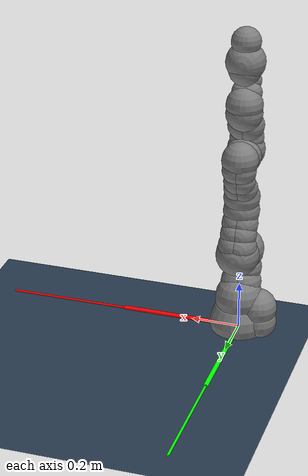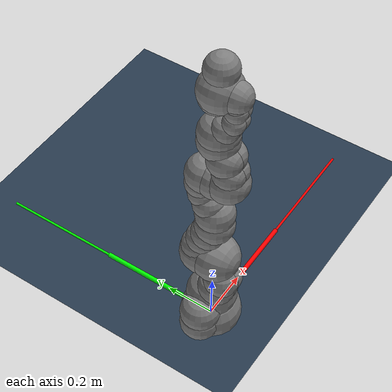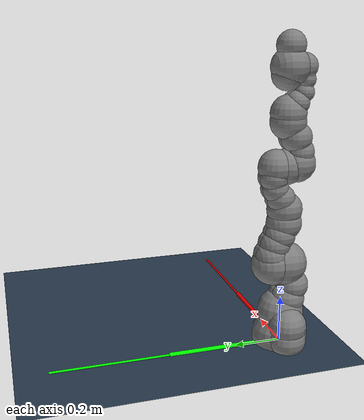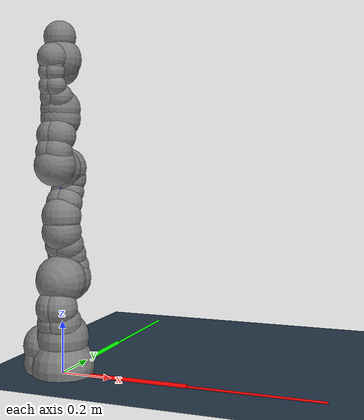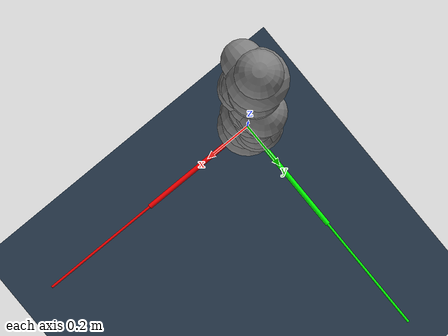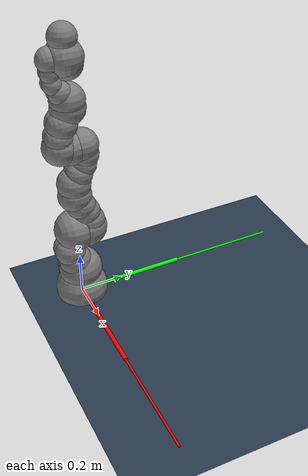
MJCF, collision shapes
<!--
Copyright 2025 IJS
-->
<mujoco model="iiwa14_scene">
  <compiler angle="radian" meshdir="assets/"/>

  <option timestep="0.001" integrator="implicitfast"/>

  <size nkey="1"/>

  <visual>
    <map stiffness="700" fogstart="1" fogend="15" zfar="40" haze="1" shadowscale="0.5"/>
    <rgba haze="0.15 0.25 0.35 1"/>
  </visual>

  <statistic meansize="0.05"/>

  <default>
    <light castshadow="false"/>
    <general biastype="affine" biasprm="0 -1"/>
    <default class="iiwa14_main">
      <light castshadow="true"/>
      <general biastype="none" biasprm="0 0"/>
      <default class="iiwa14_robot">
        <material shininess="0.25"/>
        <site size="0.001 0.005 0.005" group="4" rgba="1 0 0 1"/>
        <general biastype="affine" gainprm="2000" biasprm="0 -2000 -200"/>
        <default class="iiwa14_joint1">
          <joint range="-2.96706 2.96706"/>
          <general ctrlrange="-2.96706 2.96706"/>
          <default class="iiwa14_joint2">
            <joint range="-2.0944 2.0944"/>
            <general ctrlrange="-2.0944 2.0944"/>
          </default>
        </default>
        <default class="iiwa14_joint3">
          <joint range="-3.05433 3.05433"/>
          <general ctrlrange="-3.05433 3.05433"/>
        </default>
        <default class="iiwa14_visual">
          <geom type="mesh" contype="0" conaffinity="0" group="2" material="gray"/>
        </default>
        <default class="iiwa14_collision">
          <geom group="3"/>
        </default>
      </default>
    </default>
  </default>

  <asset>
    <texture type="skybox" colorspace="auto" builtin="gradient" rgb1="0.3 0.5 0.7" rgb2="0 0 0" width="512" height="3072"/>
    <texture type="2d" colorspace="auto" name="texplane" builtin="checker" mark="cross" rgb1="0.2 0.3 0.4" rgb2="0.1 0.15 0.2" markrgb="0.8 0.8 0.8" width="512" height="512"/>
    <material name="matplane" texture="texplane" texuniform="true" texrepeat="10 10" reflectance="0.3"/>
    <material name="iiwa14_gray" class="iiwa14_robot" rgba="0.4 0.4 0.4 1"/>
    <material name="iiwa14_light_gray" class="iiwa14_robot" rgba="0.6 0.6 0.6 1"/>
    <material name="iiwa14_black" class="iiwa14_robot" rgba="0 0 0 1"/>
    <material name="iiwa14_orange" class="iiwa14_robot" rgba="1 0.423529 0.0392157 1"/>
    <mesh name="iiwa14_link_0" content_type="model/obj" file="iiwa14/link_0.obj"/>
    <mesh name="iiwa14_link_1" content_type="model/obj" file="iiwa14/link_1.obj"/>
    <mesh name="iiwa14_link_2_orange" content_type="model/obj" file="iiwa14/link_2_orange.obj"/>
    <mesh name="iiwa14_link_2_grey" content_type="model/obj" file="iiwa14/link_2_grey.obj"/>
    <mesh name="iiwa14_link_3" content_type="model/obj" file="iiwa14/link_3.obj"/>
    <mesh name="iiwa14_band" content_type="model/obj" file="iiwa14/band.obj"/>
    <mesh name="iiwa14_kuka" content_type="model/obj" file="iiwa14/kuka.obj"/>
    <mesh name="iiwa14_link_4_orange" content_type="model/obj" file="iiwa14/link_4_orange.obj"/>
    <mesh name="iiwa14_link_4_grey" content_type="model/obj" file="iiwa14/link_4_grey.obj"/>
    <mesh name="iiwa14_link_5" content_type="model/obj" file="iiwa14/link_5.obj"/>
    <mesh name="iiwa14_link_6_orange" content_type="model/obj" file="iiwa14/link_6_orange.obj"/>
    <mesh name="iiwa14_link_6_grey" content_type="model/obj" file="iiwa14/link_6_grey.obj"/>
    <mesh name="iiwa14_link_7" content_type="model/obj" file="iiwa14/link_7.obj"/>
  </asset>

  <worldbody>
    <geom name="ground" size="0 0 1" type="plane" condim="1" material="matplane"/>
    <site pos="0.5 0 0" quat="0.707107 0 0.707107 0" size="0.005 0.5" type="cylinder" rgba="1 0 0 1"/>
    <site pos="0 0.5 0" quat="0.707107 0.707107 0 0" size="0.005 0.5" type="cylinder" rgba="0 1 0 1"/>
    <site pos="0 0 0.5" size="0.005 0.5" type="cylinder" rgba="0 0 1 1"/>
    <light pos="0 0 2" dir="0 0 -1" diffuse="0.4 0.4 0.4" specular="0.1 0.1 0.1"/>
    <light pos="0 0 4" dir="0 0 -1" type="directional" diffuse="0.8 0.8 0.8" specular="0.2 0.2 0.2"/>
    <body name="iiwa14" childclass="iiwa14_robot">
      <site name="iiwa14_x" pos="0.25 0 0" quat="0.707107 0 0.707107 0" size="0.01 0.25" group="1" type="cylinder"/>
      <site name="iiwa14_y" pos="0 0.25 0" quat="0.707107 0.707107 0 0" size="0.01 0.25" group="1" type="cylinder" rgba="0 1 0 1"/>
      <site name="iiwa14_z" pos="0 0 0.25" size="0.01 0.25" group="1" type="cylinder" rgba="0 0 1 1"/>
      <body name="iiwa14_link0">
        <inertial pos="-0.1 0 0.07" mass="5" diaginertia="0.05 0.06 0.03"/>
        <geom class="iiwa14_visual" material="iiwa14_gray" mesh="iiwa14_link_0"/>
        <geom class="iiwa14_collision" size="0.12" pos="0 0 0.03"/>
        <geom class="iiwa14_collision" size="0.08" pos="-0.08 0 0.103"/>
        <geom class="iiwa14_collision" size="0.08" pos="-0.08 0 0.04"/>
        <geom class="iiwa14_collision" size="0.1" pos="0 0 0.14"/>
        <body name="iiwa14_link1" pos="0 0 0.1575">
          <inertial pos="0 -0.03 0.12" mass="5.76" diaginertia="0.0333 0.033 0.0123"/>
          <joint name="iiwa14_joint1" class="iiwa14_joint1" pos="0 0 0" axis="0 0 1"/>
          <geom class="iiwa14_visual" material="iiwa14_gray" mesh="iiwa14_link_1"/>
          <geom class="iiwa14_collision" size="0.08" pos="0 0 -0.0005"/>
          <geom class="iiwa14_collision" size="0.075" pos="0.01 -0.025 0.0425"/>
          <geom class="iiwa14_collision" size="0.075" pos="-0.01 -0.025 0.0425"/>
          <geom class="iiwa14_collision" size="0.07" pos="0.01 -0.045 0.1025"/>
          <geom class="iiwa14_collision" size="0.07" pos="-0.01 -0.045 0.1025"/>
          <body name="iiwa14_link2" pos="0 0 0.2025" quat="0 0 0.707107 0.707107">
            <inertial pos="0.0003 0.059 0.042" quat="0 0 0.707107 0.707107" mass="6.35" diaginertia="0.0305 0.0304 0.011"/>
            <joint name="iiwa14_joint2" class="iiwa14_joint2" pos="0 0 0" axis="0 0 1"/>
            <geom class="iiwa14_visual" material="iiwa14_orange" mesh="iiwa14_link_2_orange"/>
            <geom class="iiwa14_visual" material="iiwa14_gray" mesh="iiwa14_link_2_grey"/>
            <geom class="iiwa14_collision" size="0.095" pos="0 0 -0.01"/>
            <geom class="iiwa14_collision" size="0.09" pos="0 0 0.045"/>
            <geom class="iiwa14_collision" size="0.07" pos="-0.01 0.04 0.054"/>
            <geom class="iiwa14_collision" size="0.065" pos="-0.01 0.09 0.04"/>
            <geom class="iiwa14_collision" size="0.065" pos="-0.01 0.13 0.02"/>
            <geom class="iiwa14_collision" size="0.07" pos="0.01 0.04 0.054"/>
            <geom class="iiwa14_collision" size="0.065" pos="0.01 0.09 0.04"/>
            <geom class="iiwa14_collision" size="0.065" pos="0.01 0.13 0.02"/>
            <geom class="iiwa14_collision" size="0.075" pos="0 0.18 0"/>
            <body name="iiwa14_link3" pos="0 0.2045 0" quat="0 0 0.707107 0.707107">
              <inertial pos="0 0.03 0.13" mass="3.5" diaginertia="0.025 0.0238 0.0076"/>
              <joint name="iiwa14_joint3" class="iiwa14_joint1" pos="0 0 0" axis="0 0 1"/>
              <geom class="iiwa14_visual" material="iiwa14_gray" mesh="iiwa14_link_3"/>
              <geom class="iiwa14_visual" material="iiwa14_light_gray" mesh="iiwa14_band"/>
              <geom class="iiwa14_visual" material="iiwa14_black" mesh="iiwa14_kuka"/>
              <geom class="iiwa14_collision" size="0.075" pos="0 0 0.0355"/>
              <geom class="iiwa14_collision" size="0.06" pos="0.01 0.023 0.0855"/>
              <geom class="iiwa14_collision" size="0.055" pos="0.01 0.048 0.1255"/>
              <geom class="iiwa14_collision" size="0.06" pos="0.01 0.056 0.1755"/>
              <geom class="iiwa14_collision" size="0.06" pos="-0.01 0.023 0.0855"/>
              <geom class="iiwa14_collision" size="0.055" pos="-0.01 0.048 0.1255"/>
              <geom class="iiwa14_collision" size="0.06" pos="-0.01 0.056 0.1755"/>
              <geom class="iiwa14_collision" size="0.075" pos="0 0.045 0.2155"/>
              <geom class="iiwa14_collision" size="0.075" pos="0 0 0.2155"/>
              <body name="iiwa14_link4" pos="0 0 0.2155" quat="0.707107 0.707107 0 0">
                <inertial pos="0 0.067 0.034" quat="0.707107 0.707107 0 0" mass="3.5" diaginertia="0.017 0.0164 0.006"/>
                <joint name="iiwa14_joint4" class="iiwa14_joint2" pos="0 0 0" axis="0 0 1"/>
                <geom class="iiwa14_visual" material="iiwa14_orange" mesh="iiwa14_link_4_orange"/>
                <geom class="iiwa14_visual" material="iiwa14_gray" mesh="iiwa14_link_4_grey"/>
                <geom class="iiwa14_collision" size="0.078" pos="0 0.01 0.046"/>
                <geom class="iiwa14_collision" size="0.06" pos="0.01 0.06 0.052"/>
                <geom class="iiwa14_collision" size="0.065" pos="0.01 0.12 0.034"/>
                <geom class="iiwa14_collision" size="0.06" pos="-0.01 0.06 0.052"/>
                <geom class="iiwa14_collision" size="0.065" pos="-0.01 0.12 0.034"/>
                <geom class="iiwa14_collision" size="0.075" pos="0 0.184 0"/>
                <body name="iiwa14_link5" pos="0 0.1845 0" quat="0 0 0.707107 0.707107">
                  <inertial pos="0.0001 0.021 0.076" mass="3.5" diaginertia="0.01 0.0087 0.00449"/>
                  <joint name="iiwa14_joint5" class="iiwa14_joint1" pos="0 0 0" axis="0 0 1"/>
                  <geom class="iiwa14_visual" material="iiwa14_gray" mesh="iiwa14_link_5"/>
                  <geom class="iiwa14_visual" material="iiwa14_light_gray" mesh="iiwa14_band"/>
                  <geom class="iiwa14_visual" material="iiwa14_black" mesh="iiwa14_kuka"/>
                  <geom class="iiwa14_collision" size="0.075" pos="0 0 0.0335"/>
                  <geom class="iiwa14_collision" size="0.05" pos="-0.012 0.031 0.0755"/>
                  <geom class="iiwa14_collision" size="0.05" pos="0.012 0.031 0.0755"/>
                  <geom class="iiwa14_collision" size="0.04" pos="-0.012 0.06 0.1155"/>
                  <geom class="iiwa14_collision" size="0.04" pos="0.012 0.06 0.1155"/>
                  <geom class="iiwa14_collision" size="0.04" pos="-0.01 0.065 0.1655"/>
                  <geom class="iiwa14_collision" size="0.04" pos="0.01 0.065 0.1655"/>
                  <geom class="iiwa14_collision" size="0.035" pos="-0.012 0.065 0.1855"/>
                  <geom class="iiwa14_collision" size="0.035" pos="0.012 0.065 0.1855"/>
                  <body name="iiwa14_link6" pos="0 0 0.2155" quat="0.707107 0.707107 0 0">
                    <inertial pos="0 0.0006 0.0004" quat="0.707107 0.707107 0 0" mass="1.8" diaginertia="0.0049 0.0047 0.0036"/>
                    <joint name="iiwa14_joint6" class="iiwa14_joint2" pos="0 0 0" axis="0 0 1"/>
                    <geom class="iiwa14_visual" material="iiwa14_orange" mesh="iiwa14_link_6_orange"/>
                    <geom class="iiwa14_visual" material="iiwa14_gray" mesh="iiwa14_link_6_grey"/>
                    <geom class="iiwa14_collision" size="0.055" pos="0 0 -0.059"/>
                    <geom class="iiwa14_collision" size="0.065" pos="0 -0.03 0.011"/>
                    <geom class="iiwa14_collision" size="0.08"/>
                    <body name="iiwa14_link7" pos="0 0.081 0" quat="0 0 0.707107 0.707107">
                      <inertial pos="0 0 0.02" mass="1.2" diaginertia="0.001 0.001 0.001"/>
                      <joint name="iiwa14_joint7" class="iiwa14_joint3" pos="0 0 0" axis="0 0 1"/>
                      <geom class="iiwa14_visual" material="iiwa14_gray" mesh="iiwa14_link_7"/>
                      <geom class="iiwa14_collision" size="0.06" pos="0 0 0.001"/>
                      <body name="iiwa14_flange" pos="0 0 0.045">
                        <inertial pos="0 0 0.045" quat="0.707107 0 -0.707107 0" mass="0" diaginertia="0 0 0"/>
                        <site pos="0.125 0 0" quat="0.707107 0 0.707107 0" size="0.005 0.125" group="3" type="cylinder"/>
                        <site pos="0 0.125 0" quat="0.707107 0.707107 0 0" size="0.005 0.125" group="3" type="cylinder" rgba="0 1 0 1"/>
                        <site pos="0 0 0.125" size="0.005 0.125" group="3" type="cylinder" rgba="0 0 1 1"/>
                        <site name="iiwa14_flange" pos="0 0 0"/>
                        <site name="iiwa14_TCP" pos="0 0 0"/>
                      </body>
                    </body>
                  </body>
                </body>
              </body>
            </body>
          </body>
        </body>
      </body>
    </body>
  </worldbody>

  <contact>
    <exclude body1="iiwa14_link0" body2="iiwa14_link1"/>
    <exclude body1="iiwa14_link0" body2="iiwa14_link2"/>
    <exclude body1="iiwa14_link0" body2="iiwa14_link3"/>
    <exclude body1="iiwa14_link1" body2="iiwa14_link3"/>
    <exclude body1="iiwa14_link3" body2="iiwa14_link5"/>
    <exclude body1="iiwa14_link4" body2="iiwa14_link7"/>
    <exclude body1="iiwa14_link5" body2="iiwa14_link7"/>
  </contact>

  <actuator>
    <general name="iiwa14_actuator1" class="iiwa14_joint1" joint="iiwa14_joint1"/>
    <general name="iiwa14_actuator2" class="iiwa14_joint2" joint="iiwa14_joint2"/>
    <general name="iiwa14_actuator3" class="iiwa14_joint1" joint="iiwa14_joint3"/>
    <general name="iiwa14_actuator4" class="iiwa14_joint2" joint="iiwa14_joint4"/>
    <general name="iiwa14_actuator5" class="iiwa14_joint1" joint="iiwa14_joint5"/>
    <general name="iiwa14_actuator6" class="iiwa14_joint2" joint="iiwa14_joint6"/>
    <general name="iiwa14_actuator7" class="iiwa14_joint3" joint="iiwa14_joint7"/>
  </actuator>

  <sensor>
    <framepos objtype="site" objname="iiwa14_TCP" name="iiwa14_pos"/>
    <framequat objtype="site" objname="iiwa14_TCP" name="iiwa14_ori"/>
    <framelinvel objtype="site" objname="iiwa14_TCP" name="iiwa14_v"/>
    <frameangvel objtype="site" objname="iiwa14_TCP" name="iiwa14_w"/>
    <force site="iiwa14_TCP" name="iiwa14_force" noise="0.5"/>
    <torque site="iiwa14_TCP" name="iiwa14_torque" noise="0.5"/>
    <jointpos joint="iiwa14_joint1" name="iiwa14_pos_joint1"/>
    <jointpos joint="iiwa14_joint2" name="iiwa14_pos_joint2"/>
    <jointpos joint="iiwa14_joint3" name="iiwa14_pos_joint3"/>
    <jointpos joint="iiwa14_joint4" name="iiwa14_pos_joint4"/>
    <jointpos joint="iiwa14_joint5" name="iiwa14_pos_joint5"/>
    <jointpos joint="iiwa14_joint6" name="iiwa14_pos_joint6"/>
    <jointpos joint="iiwa14_joint7" name="iiwa14_pos_joint7"/>
    <jointvel joint="iiwa14_joint1" name="iiwa14_vel_joint1"/>
    <jointvel joint="iiwa14_joint2" name="iiwa14_vel_joint2"/>
    <jointvel joint="iiwa14_joint3" name="iiwa14_vel_joint3"/>
    <jointvel joint="iiwa14_joint4" name="iiwa14_vel_joint4"/>
    <jointvel joint="iiwa14_joint5" name="iiwa14_vel_joint5"/>
    <jointvel joint="iiwa14_joint6" name="iiwa14_vel_joint6"/>
    <jointvel joint="iiwa14_joint7" name="iiwa14_vel_joint7"/>
  </sensor>

  <keyframe>
    <key name="iiwa14_home" qpos="0 0.785398 0 -1.5708 0 0 0" ctrl="0 0.785398 0 -1.5708 0 0 0"/>
  </keyframe>
</mujoco>
